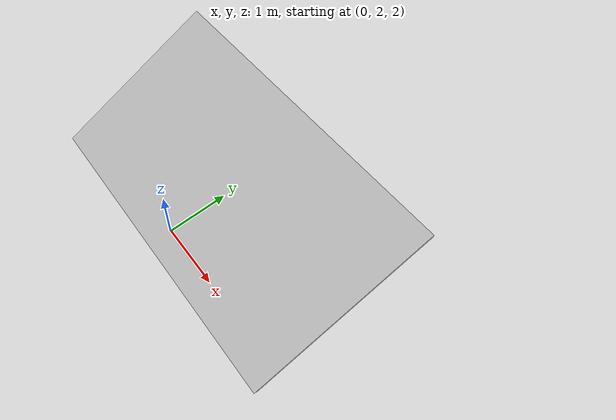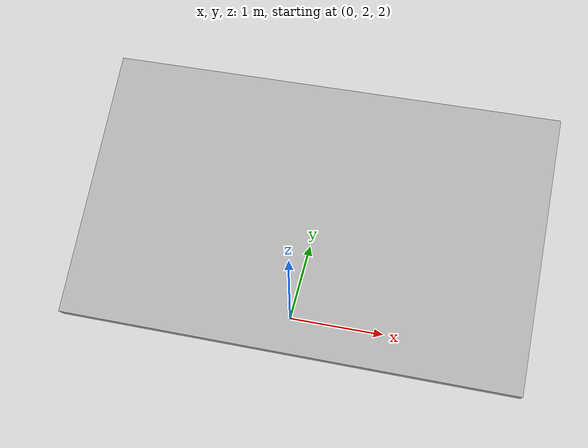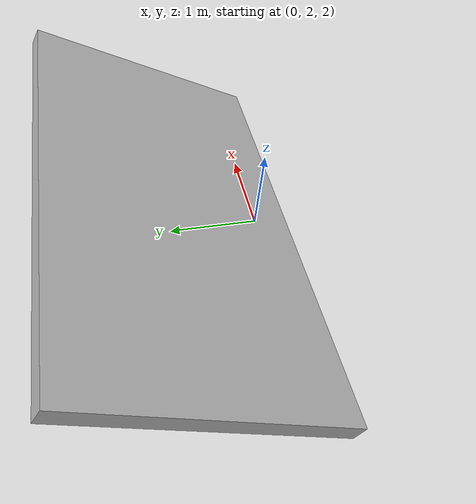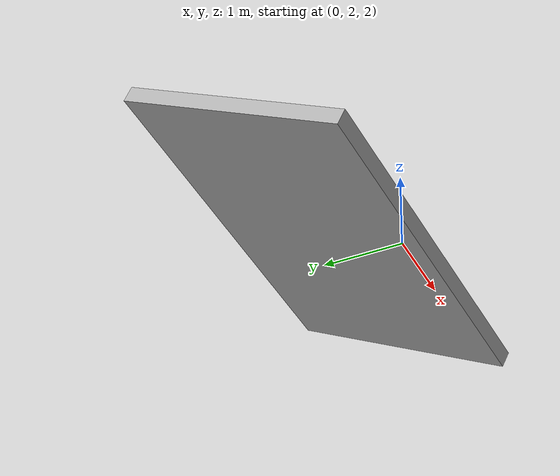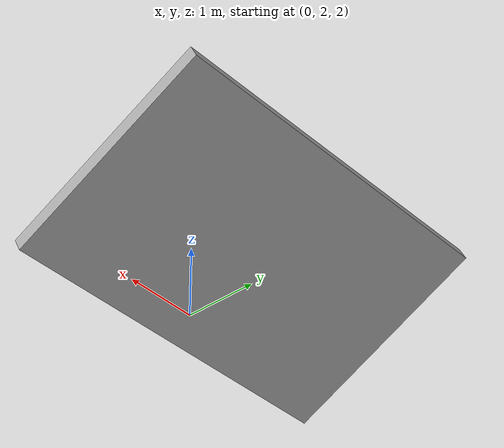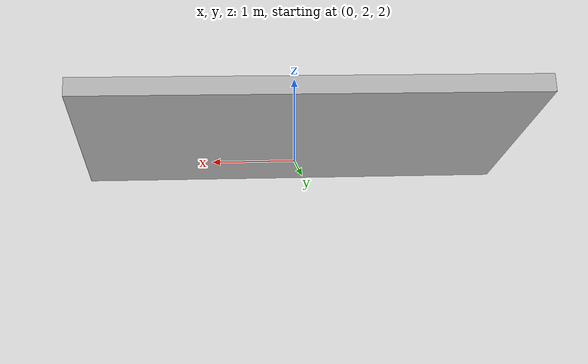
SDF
<?xml version="1.0" ?>
<sdf version="1.8">
    <model name='box'>
      <pose>0 3 2.5 90 0 0</pose>
      <link name='box_link'>
        <inertial>
          <inertia>
            <ixx>0.16666</ixx>
            <ixy>0</ixy>
            <ixz>0</ixz>
            <iyy>0.16666</iyy>
            <iyz>0</iyz>
            <izz>0.16666</izz>
          </inertia>
          <mass>1</mass>
          <pose>0 0 0 0 0 0</pose>
        </inertial>
        <collision name='box_collision'>
          <geometry>
            <box>
              <size>5 0.5 3</size>
            </box>
          </geometry>
          <surface>
            <friction>
              <ode/>
            </friction>
            <bounce/>
            <contact/>
          </surface>
        </collision>
        <visual name='box_visual'>
          <geometry>
            <box>
              <size>5 0.2 3</size>
            </box>
          </geometry>
          <material>
            <ambient>0.300000012 0.300000012 0.300000012 1</ambient>
            <diffuse>0.699999988 0.699999988 0.699999988 1</diffuse>
            <specular>1 1 1 1</specular>
          </material>
        </visual>
        <pose>0 0 0 0 0 0</pose>
        <enable_wind>false</enable_wind>
      </link>
      <static>false</static>
      <self_collide>false</self_collide>
    </model>
</sdf>
